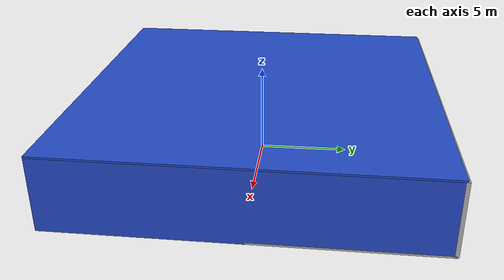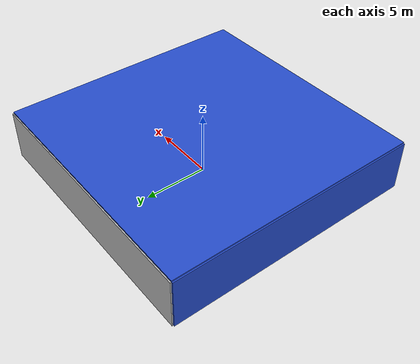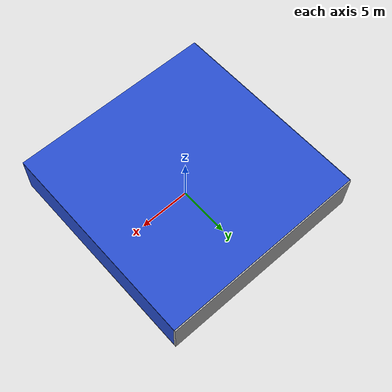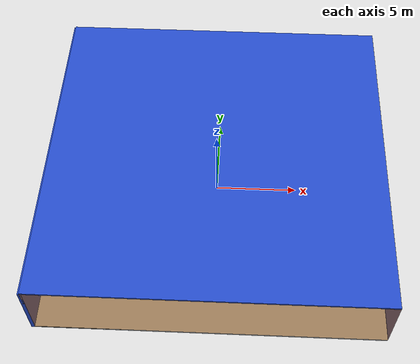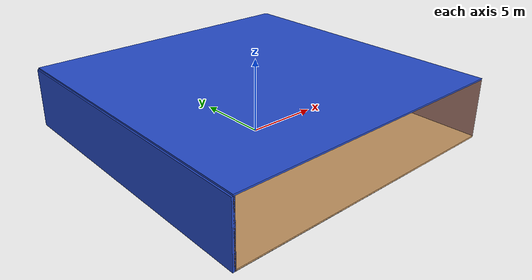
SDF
<sdf version="1.4">
 <world name="default">
  <physics type="ode">
   <max_step_size>0.001</max_step_size>
   <real_time_factor>1</real_time_factor>
   <real_time_update_rate>1000</real_time_update_rate>
   <gravity>0 0 -9.8</gravity>
  </physics>
  <scene><ambient>0.4 0.4 0.4 1</ambient><background>0.7 0.7 0.7 1</background><shadows>1</shadows></scene>
  <model name="Surrounding">
   <static>1</static>
   <link name="Ceiling">
    <collision name="Ceiling_Collision"><geometry><box><size>20 20 0.1</size></box></geometry></collision>
    <visual name="Ceiling_Visual">
     <geometry><box><size>20 20 0.1</size></box></geometry>
     <material>
      <script><uri>file://media/materials/scripts/gazebo.material</uri><name>Gazebo/BlueGlow</name></script>
     </material>
    </visual>
    <pose>0 0 4.05 0 0 0</pose>
   </link>
   <link name="Wall_South">
    <collision name="Wall_South_Collision">
     <geometry><box><size>20 0 4</size></box></geometry>
     <pose>0 0 2 0 -0 0</pose>
    </collision>
    <visual name="Wall_South_Visual">
     <pose>0 0 2 0 -0 0</pose>
     <geometry><box><size>20 0 4</size></box></geometry>
     <material>
      <script>
       <uri>file://media/materials/scripts/gazebo.material</uri>
       <name>Gazebo/OrangeTransparent</name>
      </script>
     </material>
    </visual>
    <velocity_decay><linear>0</linear><angular>0</angular></velocity_decay>
    <pose>0 -10 0 0 -0 0</pose>
   </link>
   <link name="Wall_East">
    <collision name="Wall_21_Collision">
     <geometry><box><size>20 0 4</size></box></geometry>
     <pose>0 0 2 0 -0 0</pose>
    </collision>
    <visual name="Wall_21_Visual">
     <pose>0 0 2 0 -0 0</pose>
     <geometry><box><size>20 0 4</size></box></geometry>
     <material>
      <script><uri>file://media/materials/scripts/gazebo.material</uri><name>Gazebo/BlueGlow</name></script>
     </material>
    </visual>
    <velocity_decay><linear>0</linear><angular>0</angular></velocity_decay>
    <pose>10 0 0 0 -0 1.5708</pose>
   </link>
   <link name="Wall_North">
    <collision name="Wall_22_Collision">
     <geometry><box><size>20 0.2 4</size></box></geometry>
     <pose>0 0 2 0 -0 0</pose>
    </collision>
    <visual name="Wall_22_Visual">
     <pose>0 0 2 0 -0 0</pose>
     <geometry><box><size>20 0.2 4</size></box></geometry>
     <material>
      <script><uri>file://media/materials/scripts/gazebo.material</uri><name>Gazebo/JointAnchor</name></script>
     </material>
    </visual>
    <velocity_decay><linear>0</linear><angular>0</angular></velocity_decay>
    <pose>0 10 0 0 -0 0</pose>
   </link>
   <link name="Wall_West">
    <collision name="Wall_23_Collision">
     <geometry><box><size>20 0.2 4</size></box></geometry>
     <pose>0 0 2 0 -0 0</pose>
    </collision>
    <visual name="Wall_23_Visual">
     <pose>0 0 2 0 -0 0</pose>
     <geometry><box><size>20 0.2 4</size></box></geometry>
     <material>
      <script><uri>file://media/materials/scripts/gazebo.material</uri><name>Gazebo/Blue</name></script>
     </material>
    </visual>
    <velocity_decay><linear>0</linear><angular>0</angular></velocity_decay>
    <pose>-10 0 0 0 0 -1.5708</pose>
   </link>
   <link name="Ground_link">
    <collision name="collision">
     <pose>0 0 .05 0 -0 0</pose>
     <geometry><box><size>20 20 0.1</size></box></geometry>
    </collision>
    <visual name="visual">
     <pose>0 0 .05 0 -0 0</pose>
     <geometry><box><size>20 20 0.1</size></box></geometry>
     <material>
      <script><uri>file://media/materials/scripts/gazebo.material</uri><name>Gazebo/LightOn</name></script>
     </material>
    </visual>
   </link>
   <static>1</static>
  </model>
  <spherical_coordinates>
   <surface_model>EARTH_WGS84</surface_model>
   <latitude_deg>0</latitude_deg>
   <longitude_deg>0</longitude_deg>
   <elevation>0</elevation>
   <heading_deg>0</heading_deg>
  </spherical_coordinates>
  <light name="lightball_0" type="diffuse">
   <diffuse>0.8 0.8 0.8 1</diffuse>
   <specular>0.2 0.2 0.2 1</specular>
   <attenuation>
    <range>100</range>
    <constant>0.7</constant>
    <linear>0.01</linear>
    <quadratic>0.001</quadratic>
   </attenuation>
   <direction>-0.5 0.1 -0.9</direction>
   <pose>-3.50298411816 0.233859407247 0.960863491466 0 0 0</pose>
  </light>
  <light name="lightball_1" type="diffuse">
   <diffuse>0.8 0.8 0.8 1</diffuse>
   <specular>0.2 0.2 0.2 1</specular>
   <attenuation>
    <range>100</range>
    <constant>0.7</constant>
    <linear>0.01</linear>
    <quadratic>0.001</quadratic>
   </attenuation>
   <direction>-0.5 0.1 -0.9</direction>
   <pose>3.62299229596 2.04062027182 3.07061776388 0 0 0</pose>
  </light>
  <light name="lightball_2" type="diffuse">
   <diffuse>0.8 0.8 0.8 1</diffuse>
   <specular>0.2 0.2 0.2 1</specular>
   <attenuation>
    <range>100</range>
    <constant>0.7</constant>
    <linear>0.01</linear>
    <quadratic>0.001</quadratic>
   </attenuation>
   <direction>-0.5 0.1 -0.9</direction>
   <pose>3.5852437227 -2.03252761129 3.33769084924 0 0 0</pose>
  </light>
  <light name="lightball_3" type="diffuse">
   <diffuse>0.8 0.8 0.8 1</diffuse>
   <specular>0.2 0.2 0.2 1</specular>
   <attenuation>
    <range>100</range>
    <constant>0.7</constant>
    <linear>0.01</linear>
    <quadratic>0.001</quadratic>
   </attenuation>
   <direction>-0.5 0.1 -0.9</direction>
   <pose>6.10406706697 2.87861542162 3.89395256466 0 0 0</pose>
  </light>
  <light name="lightball_4" type="diffuse">
   <diffuse>0.8 0.8 0.8 1</diffuse>
   <specular>0.2 0.2 0.2 1</specular>
   <attenuation>
    <range>100</range>
    <constant>0.7</constant>
    <linear>0.01</linear>
    <quadratic>0.001</quadratic>
   </attenuation>
   <direction>-0.5 0.1 -0.9</direction>
   <pose>-2.46437083296 0.176505498007 1.81147524283 0 0 0</pose>
  </light>
  <include><uri>model://cabinet</uri><pose>-8.25913600748 -3.96956455111 0 0 0 0.459918229971</pose></include>
  <include>
   <uri>model://construction_cone</uri>
   <pose>-1.25786470983 -2.39525559813 0 0 0 2.01474545996</pose>
  </include>
  <include><uri>model://table</uri><pose>0.481780923694 -0.960287935886 0 0 0 1.68543487027</pose></include>
  <include><uri>model://cabinet</uri><pose>5.44797860272 3.32812467452 0 0 0 2.56180192373</pose></include>
  <include>
   <uri>model://construction_cone</uri>
   <pose>4.14478196948 6.47910676153 0 0 0 0.0966949832897</pose>
  </include>
  <include>
   <uri>model://robocup_3Dsim_goal</uri>
   <pose>6.45407420593 1.9326074666 0 0 0 3.10893552932</pose>
  </include>
 </world>
</sdf>

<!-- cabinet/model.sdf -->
<sdf version="1.5">
  <model name="cabinet">
    <static>true</static>
    <link name="cabinet_bottom_plate">
      <inertial>
        <pose>0 0 -1 0 0 0</pose>
        <inertia>
          <ixx>2.050000</ixx>
          <ixy>0</ixy>
          <ixz>0</ixz>
          <iyy>2.050000</iyy>
          <iyz>0</iyz>
          <izz>2.050000</izz>
        </inertia>
        <mass>25.000000</mass>
      </inertial>
      <collision name="cabinet_bottom_plate_geom">
        <pose>0 0 0.010000 0 0 0</pose>
        <geometry>
          <box>
            <size>0.450000 0.450000 0.020000</size>
          </box>
        </geometry>
      </collision>
      <visual name="cabinet_bottom_plate_geom_visual">
        <pose>0 0 0.010000 0 0 0</pose>
        <geometry>
          <box>
            <size>0.450000 0.450000 0.020000</size>
          </box>
        </geometry>
        <material>
          <script>
            <uri>model://media/materials/scripts/gazebo.material</uri>
            <name>Gazebo/Wood</name>
          </script>
        </material>
      </visual>
      <collision name="cabinet_bottom_plate_geom_cabinet_back_plate">
        <pose>0.235000 0 0.510000 0 0 0</pose>
        <geometry>
          <box>
            <size>0.020000 0.450000 1.020000</size>
          </box>
        </geometry>
      </collision>
      <visual name="cabinet_bottom_plate_geom_cabinet_back_plate_visual">
        <pose>0.235000 0 0.510000 0 0 0</pose>
        <geometry>
          <box>
            <size>0.020000 0.450000 1.020000</size>
          </box>
        </geometry>
        <material>
          <script>
            <uri>model://media/materials/scripts/gazebo.material</uri>
            <name>Gazebo/Wood</name>
          </script>
        </material>
      </visual>
      <collision name="cabinet_bottom_plate_geom_cabinet_left_plate">
        <pose>0 0.235000 0.510000 0 0 0</pose>
        <geometry>
          <box>
            <size>0.450000 0.020000 1.020000</size>
          </box>
        </geometry>
      </collision>
      <visual name="cabinet_bottom_plate_geom_cabinet_left_plate_visual">
        <pose>0 0.235000 0.510000 0 0 0</pose>
        <geometry>
          <box>
            <size>0.450000 0.020000 1.020000</size>
          </box>
        </geometry>
        <material>
          <script>
            <uri>model://media/materials/scripts/gazebo.material</uri>
            <name>Gazebo/Wood</name>
          </script>
        </material>
      </visual>
      <collision name="cabinet_bottom_plate_geom_cabinet_middle_plate">
        <pose>0 0 0.510000 0 0 0</pose>
        <geometry>
          <box>
            <size>0.450000 0.450000 0.020000</size>
          </box>
        </geometry>
      </collision>
      <visual name="cabinet_bottom_plate_geom_cabinet_middle_plate_visual">
        <pose>0 0 0.510000 0 0 0</pose>
        <geometry>
          <box>
            <size>0.450000 0.450000 0.020000</size>
          </box>
        </geometry>
        <material>
          <script>
            <uri>model://media/materials/scripts/gazebo.material</uri>
            <name>Gazebo/Wood</name>
          </script>
        </material>
      </visual>
      <collision name="cabinet_bottom_plate_geom_cabinet_right_plate">
        <pose>0 -0.235000 0.510000 0 0 0</pose>
        <geometry>
          <box>
            <size>0.450000 0.020000 1.020000</size>
          </box>
        </geometry>
      </collision>
      <visual name="cabinet_bottom_plate_geom_cabinet_right_plate_visual">
        <pose>0 -0.235000 0.510000 0 0 0</pose>
        <geometry>
          <box>
            <size>0.450000 0.020000 1.020000</size>
          </box>
        </geometry>
        <material>
          <script>
            <uri>model://media/materials/scripts/gazebo.material</uri>
            <name>Gazebo/Wood</name>
          </script>
        </material>
      </visual>
      <collision name="cabinet_bottom_plate_geom_cabinet_top_plate">
        <pose>0 0 1.010000 0 0 0</pose>
        <geometry>
          <box>
            <size>0.450000 0.450000 0.020000</size>
          </box>
        </geometry>
      </collision>
      <visual name="cabinet_bottom_plate_geom_cabinet_top_plate_visual">
        <pose>0 0 1.010000 0 0 0</pose>
        <geometry>
          <box>
            <size>0.450000 0.450000 0.020000</size>
          </box>
        </geometry>
        <material>
          <script>
            <uri>model://media/materials/scripts/gazebo.material</uri>
            <name>Gazebo/Wood</name>
          </script>
        </material>
      </visual>
    </link>
  </model>
</sdf>

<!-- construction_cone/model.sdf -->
<sdf version="1.5">
  <model name="Construction Cone">
    <link name="link">
      <collision name="collision">
        <geometry>
          <mesh>
            <scale>10 10 10</scale>
            <uri>file://isr-testbed/construction_cone/meshes/construction_cone.dae</uri>
          </mesh>
        </geometry>
      </collision>
      <visual name="visual">
        <geometry>
          <mesh>
            <scale>10 10 10</scale>
            <uri>file://isr-testbed/construction_cone/meshes/construction_cone.dae</uri>
          </mesh>
        </geometry>
      </visual>
    </link>
  </model>
</sdf>

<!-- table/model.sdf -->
<sdf version="1.5">
  <model name="table">
    <static>true</static>
    <link name="link">
      <collision name="surface">
        <pose>0 0 1.0 0 0 0</pose>
        <geometry>
          <box>
            <size>1.5 0.8 0.03</size>
          </box>
        </geometry>
        <surface>
          <friction>
            <ode>
              <mu>0.6</mu>
              <mu2>0.6</mu2>
            </ode>
          </friction>
        </surface>
      </collision>
      <visual name="visual1">
        <pose>0 0 1.0 0 0 0</pose>
        <geometry>
          <box>
            <size>1.5 0.8 0.03</size>
          </box>
        </geometry>
        <material>
          <script>
            <uri>model://media/materials/scripts/gazebo.material</uri>
            <name>Gazebo/Wood</name>
          </script>
        </material>
      </visual>
      <collision name="front_left_leg">
        <pose>0.68 0.38 0.5 0 0 0</pose>
        <geometry>
          <cylinder>
            <radius>0.02</radius>
            <length>1.0</length>
          </cylinder>
        </geometry>
      </collision>
      <visual name="front_left_leg">
        <pose>0.68 0.38 0.5 0 0 0</pose>
        <geometry>
          <cylinder>
            <radius>0.02</radius>
            <length>1.0</length>
          </cylinder>
        </geometry>
        <material>
          <script>
            <uri>model://media/materials/scripts/gazebo.material</uri>
            <name>Gazebo/Grey</name>
          </script>
        </material>
      </visual>
      <collision name="front_right_leg">
        <pose>0.68 -0.38 0.5 0 0 0</pose>
        <geometry>
          <cylinder>
            <radius>0.02</radius>
            <length>1.0</length>
          </cylinder>
        </geometry>
      </collision>
      <visual name="front_right_leg">
        <pose>0.68 -0.38 0.5 0 0 0</pose>
        <geometry>
          <cylinder>
            <radius>0.02</radius>
            <length>1.0</length>
          </cylinder>
        </geometry>
        <material>
          <script>
            <uri>model://media/materials/scripts/gazebo.material</uri>
            <name>Gazebo/Grey</name>
          </script>
        </material>
      </visual>
      <collision name="back_right_leg">
        <pose>-0.68 -0.38 0.5 0 0 0</pose>
        <geometry>
          <cylinder>
            <radius>0.02</radius>
            <length>1.0</length>
          </cylinder>
        </geometry>
      </collision>
      <visual name="back_right_leg">
        <pose>-0.68 -0.38 0.5 0 0 0</pose>
        <geometry>
          <cylinder>
            <radius>0.02</radius>
            <length>1.0</length>
          </cylinder>
        </geometry>
        <material>
          <script>
            <uri>model://media/materials/scripts/gazebo.material</uri>
            <name>Gazebo/Grey</name>
          </script>
        </material>
      </visual>
      <collision name="back_left_leg">
        <pose>-0.68 0.38 0.5 0 0 0</pose>
        <geometry>
          <cylinder>
            <radius>0.02</radius>
            <length>1.0</length>
          </cylinder>
        </geometry>
      </collision>
      <visual name="back_left_leg">
        <pose>-0.68 0.38 0.5 0 0 0</pose>
        <geometry>
          <cylinder>
            <radius>0.02</radius>
            <length>1.0</length>
          </cylinder>
        </geometry>
        <material>
          <script>
            <uri>model://media/materials/scripts/gazebo.material</uri>
            <name>Gazebo/Grey</name>
          </script>
        </material>
      </visual>
    </link>
  </model>
</sdf>

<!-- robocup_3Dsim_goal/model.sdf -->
<sdf version="1.5">
  <model name="robocup_3d_goal">
    <static>true</static>
    <link name="left_post">
      <pose>0 1.05 0.45 0 0 0</pose>
      <collision name="collision">
        <geometry>
          <cylinder>
            <radius>0.05</radius>
            <length>0.9</length>
          </cylinder>
        </geometry>
      </collision>
      <visual name="visual">
        <geometry>
          <cylinder>
            <radius>0.05</radius>
            <length>0.9</length>
          </cylinder>
        </geometry>
        <material>
          <script>
            <uri>file://media/materials/scripts/gazebo.material</uri>
            <name>Gazebo/ZincYellow</name>
          </script>
        </material>
      </visual>
    </link>
    <link name="left_support_horiz_lower">
      <pose>0.30 1.05 0.01 0 0 0</pose>
      <collision name="collision">
        <geometry>
          <box>
            <size>0.50 0.02 0.02</size>
          </box>
        </geometry>
      </collision>
      <visual name="visual">
        <geometry>
          <box>
            <size>0.50 0.02 0.02</size>
          </box>
        </geometry>
        <material>
          <script>
            <uri>file://media/materials/scripts/gazebo.material</uri>
            <name>Gazebo/White</name>
          </script>
        </material>
      </visual>
    </link>
    <link name="left_support_horiz_upper">
      <pose>0.30 1.05 0.79 0 0 0</pose>
      <collision name="collision">
        <geometry>
          <box>
            <size>0.50 0.02 0.02</size>
          </box>
        </geometry>
      </collision>
      <visual name="visual">
        <geometry>
          <box>
            <size>0.50 0.02 0.02</size>
          </box>
        </geometry>
        <material>
          <script>
            <uri>file://media/materials/scripts/gazebo.material</uri>
            <name>Gazebo/White</name>
          </script>
        </material>
      </visual>
    </link>
    <link name="left_support_vertical">
      <pose>0.56 1.05 0.4 0 1.5708 0</pose>
      <collision name="collision">
        <geometry>
          <box>
            <size>0.80 0.02 0.02</size>
          </box>
        </geometry>
      </collision>
      <visual name="visual">
        <geometry>
          <box>
            <size>0.80 0.02 0.02</size>
          </box>
        </geometry>
        <material>
          <script>
            <uri>file://media/materials/scripts/gazebo.material</uri>
            <name>Gazebo/White</name>
          </script>
        </material>
      </visual>
    </link>
    <link name="right_support_horiz_lower">
      <pose>0.30 -1.05 0.01 0 0 0</pose>
      <collision name="collision">
        <geometry>
          <box>
            <size>0.50 0.02 0.02</size>
          </box>
        </geometry>
      </collision>
      <visual name="visual">
        <geometry>
          <box>
            <size>0.50 0.02 0.02</size>
          </box>
        </geometry>
        <material>
          <script>
            <uri>file://media/materials/scripts/gazebo.material</uri>
            <name>Gazebo/White</name>
          </script>
        </material>
      </visual>
    </link>
    <link name="right_support_horiz_upper">
      <pose>0.30 -1.05 0.79 0 0 0</pose>
      <collision name="collision">
        <geometry>
          <box>
            <size>0.50 0.02 0.02</size>
          </box>
        </geometry>
      </collision>
      <visual name="visual">
        <geometry>
          <box>
            <size>0.50 0.02 0.02</size>
          </box>
        </geometry>
        <material>
          <script>
            <uri>file://media/materials/scripts/gazebo.material</uri>
            <name>Gazebo/White</name>
          </script>
        </material>
      </visual>
    </link>
    <link name="right_support_vertical">
      <pose>0.56 -1.05 0.4 0 1.5708 0</pose>
      <collision name="collision">
        <geometry>
          <box>
            <size>0.80 0.02 0.02</size>
          </box>
        </geometry>
      </collision>
      <visual name="visual">
        <geometry>
          <box>
            <size>0.80 0.02 0.02</size>
          </box>
        </geometry>
        <material>
          <script>
            <uri>file://media/materials/scripts/gazebo.material</uri>
            <name>Gazebo/White</name>
          </script>
        </material>
      </visual>
    </link>
    <link name="center_support_horiz_lower">
      <pose>0.56 0 0.01 0 1.5708 0</pose>
      <collision name="collision">
        <geometry>
          <box>
            <size>0.02 2.08 0.02</size>
          </box>
        </geometry>
      </collision>
      <visual name="visual">
        <geometry>
          <box>
            <size>0.02 2.08 0.02</size>
          </box>
        </geometry>
        <material>
          <script>
            <uri>file://media/materials/scripts/gazebo.material</uri>
            <name>Gazebo/White</name>
          </script>
        </material>
      </visual>
    </link>
    <link name="center_support_horiz_upper">
      <pose>0.56 0 0.79 0 1.5708 0</pose>
      <collision name="collision">
        <geometry>
          <box>
            <size>0.02 2.08 0.02</size>
          </box>
        </geometry>
      </collision>
      <visual name="visual">
        <geometry>
          <box>
            <size>0.02 2.08 0.02</size>
          </box>
        </geometry>
        <material>
          <script>
            <uri>file://media/materials/scripts/gazebo.material</uri>
            <name>Gazebo/White</name>
          </script>
        </material>
      </visual>
    </link>
    <link name="right_post">
      <pose>0 -1.05 0.45 0 0 0</pose>
      <collision name="collision">
        <geometry>
          <cylinder>
            <radius>0.05</radius>
            <length>0.9</length>
          </cylinder>
        </geometry>
      </collision>
      <visual name="visual">
        <geometry>
          <cylinder>
            <radius>0.05</radius>
            <length>0.9</length>
          </cylinder>
        </geometry>
        <material>
          <script>
            <uri>file://media/materials/scripts/gazebo.material</uri>
            <name>Gazebo/ZincYellow</name>
          </script>
        </material>
      </visual>
    </link>
    <link name="crossbar">
      <pose>0 0 0.85 1.57 1.57 0</pose>
      <collision name="collision">
        <geometry>
          <cylinder>
            <radius>0.05</radius>
            <length>2.0</length>
          </cylinder>
        </geometry>
      </collision>
      <visual name="visual">
        <geometry>
          <cylinder>
            <radius>0.05</radius>
            <length>2.0</length>
          </cylinder>
        </geometry>
        <material>
          <script>
            <uri>file://media/materials/scripts/gazebo.material</uri>
            <name>Gazebo/ZincYellow</name>
          </script>
        </material>
      </visual>
    </link>
    <link name="center_net">
      <pose>0.56 0 0.40 0 0 0</pose>
      <collision name="collision">
        <geometry>
          <box>
            <size>0.01 2.1 0.80</size>
          </box>
        </geometry>
      </collision>
      <visual name="visual">
        <geometry>
          <box>
            <size>0.01 2.1 0.80</size>
          </box>
        </geometry>
        <material>
          <script>
            <uri>model://../model_source/models/robocup09_spl_field/materials/scripts/</uri>
            <uri>model://../model_source/models/robocup09_spl_field/materials/textures/</uri>
            <name>RoboCup/Net</name>
          </script>
        </material>
      </visual>
    </link>
    <link name="left_net">
      <pose>0.30 1.05 0.40 0 0 0</pose>
      <collision name="collision">
        <geometry>
          <box>
            <size>0.50 0.01 0.76</size>
          </box>
        </geometry>
      </collision>
      <visual name="visual">
        <geometry>
          <box>
            <size>0.50 0.01 0.76</size>
          </box>
        </geometry>
        <material>
          <script>
            <uri>model://../model_source/models/robocup09_spl_field/materials/scripts/</uri>
            <uri>model://../model_source/models/robocup09_spl_field/materials/textures/</uri>
            <name>RoboCup/Net</name>
          </script>
        </material>
      </visual>
    </link>
    <link name="right_net">
      <pose>0.30 -1.05 0.40 0 0 0</pose>
      <collision name="collision">
        <geometry>
          <box>
            <size>0.50 0.01 0.76</size>
          </box>
        </geometry>
      </collision>
      <visual name="visual">
        <geometry>
          <box>
            <size>0.50 0.01 0.76</size>
          </box>
        </geometry>
        <material>
          <script>
            <uri>model://../model_source/models/robocup09_spl_field/materials/scripts/</uri>
            <uri>model://../model_source/models/robocup09_spl_field/materials/textures/</uri>
            <name>RoboCup/Net</name>
          </script>
        </material>
      </visual>
    </link>
  </model>
</sdf>
